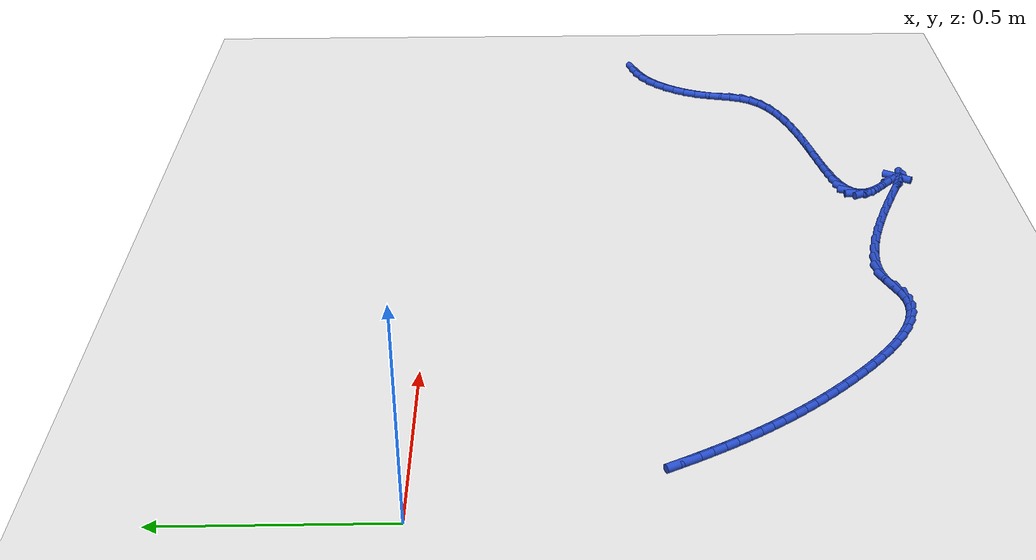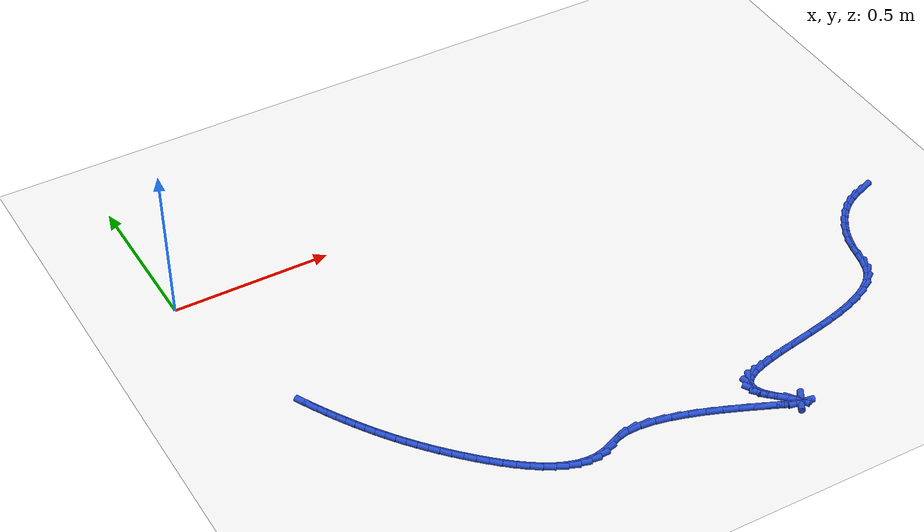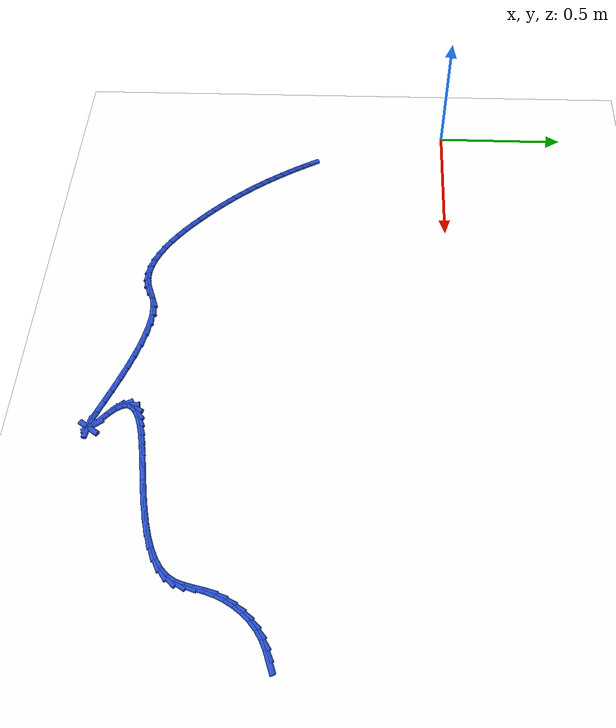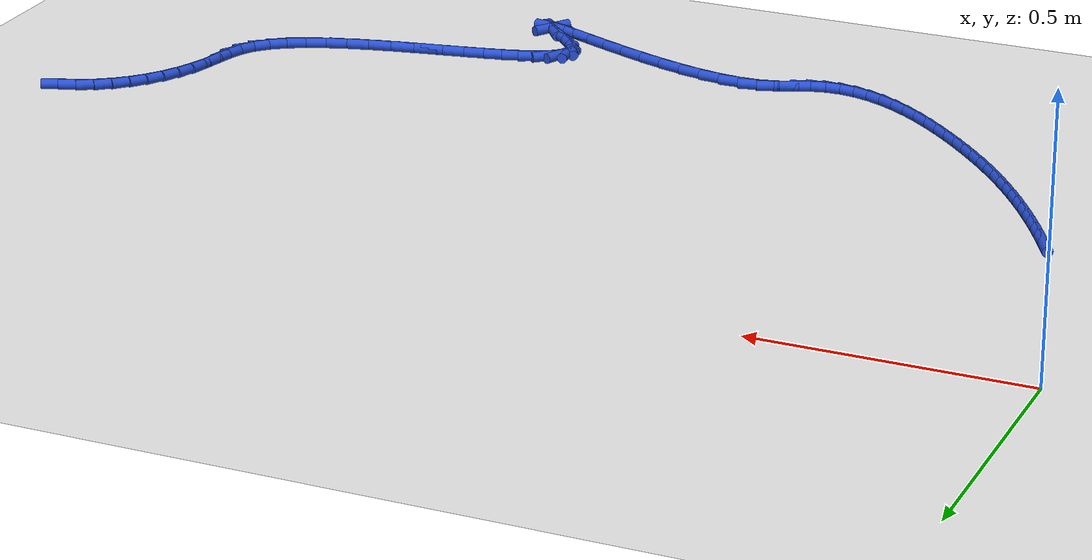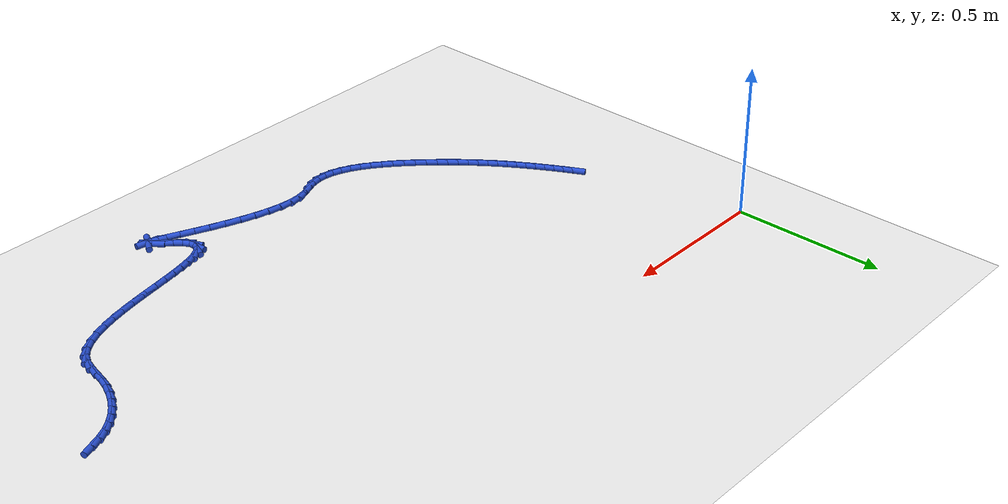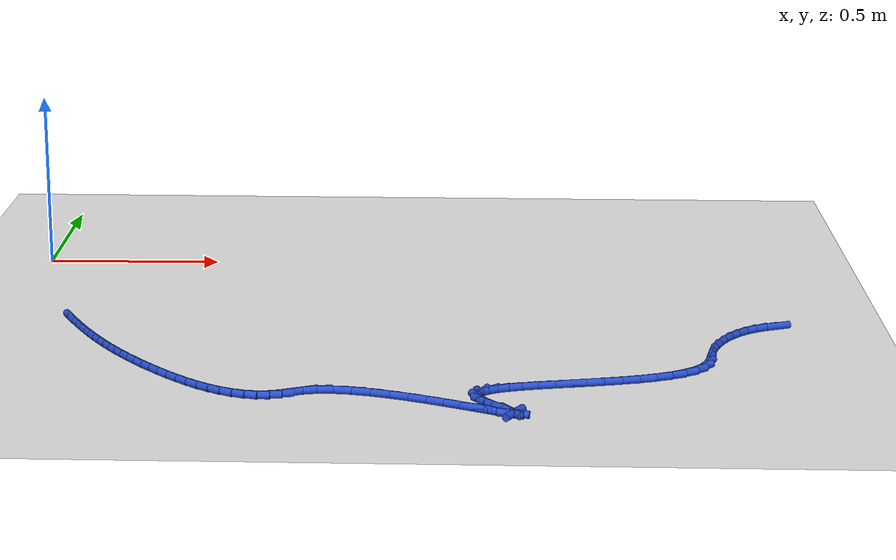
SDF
<sdf version="1.6">
 <world name="default">
  <model name="ground_plane">
   <static>1</static>
   <link name="link">
    <collision name="collision">
     <geometry><plane><normal>0 0 1</normal><size>100 100</size></plane></geometry>
     <surface><friction><ode><mu>100</mu><mu2>50</mu2></ode></friction></surface>
    </collision>
    <visual name="visual">
     <cast_shadows>0</cast_shadows>
     <geometry><plane><normal>0 0 1</normal><size>100 100</size></plane></geometry>
     <material>
      <script><uri>file://media/materials/scripts/gazebo.material</uri><name>Gazebo/WhiteGlow</name></script>
     </material>
    </visual>
   </link>
  </model>
  <model name="line">
   <link name="link_142">
    <pose>2.0906836996609313 -0.5619551692725093 0.01 0 1.57 0.36632144584368065</pose>
    <collision name="collision">
     <geometry><cylinder><radius>0.01</radius><length>0.08</length></cylinder></geometry>
    </collision>
    <visual name="visual">
     <material>
      <script><name>Gazebo/Blue</name><uri>file://media/materials/scripts/gazebo.material</uri></script>
     </material>
     <geometry><cylinder><radius>0.01</radius><length>0.08</length></cylinder></geometry>
    </visual>
   </link>
   <link name="link_143">
    <pose>2.0600702103494464 -0.573699643334735 0.01 0 1.57 0.45559553834545385</pose>
    <collision name="collision">
     <geometry><cylinder><radius>0.01</radius><length>0.08</length></cylinder></geometry>
    </collision>
    <visual name="visual">
     <material>
      <script><name>Gazebo/Blue</name><uri>file://media/materials/scripts/gazebo.material</uri></script>
     </material>
     <geometry><cylinder><radius>0.01</radius><length>0.08</length></cylinder></geometry>
    </visual>
   </link>
   <link name="link_144">
    <pose>2.0303823651149937 -0.5882459469600918 0.01 0 1.57 0.5963834001328773</pose>
    <collision name="collision">
     <geometry><cylinder><radius>0.01</radius><length>0.08</length></cylinder></geometry>
    </collision>
    <visual name="visual">
     <material>
      <script><name>Gazebo/Blue</name><uri>file://media/materials/scripts/gazebo.material</uri></script>
     </material>
     <geometry><cylinder><radius>0.01</radius><length>0.08</length></cylinder></geometry>
    </visual>
   </link>
   <link name="link_145">
    <pose>2.003159341376341 -0.6067260397685962 0.01 0 1.57 0.7272837824652816</pose>
    <collision name="collision">
     <geometry><cylinder><radius>0.01</radius><length>0.08</length></cylinder></geometry>
    </collision>
    <visual name="visual">
     <material>
      <script><name>Gazebo/Blue</name><uri>file://media/materials/scripts/gazebo.material</uri></script>
     </material>
     <geometry><cylinder><radius>0.01</radius><length>0.08</length></cylinder></geometry>
    </visual>
   </link>
   <link name="link_146">
    <pose>1.978504035169031 -0.6286701943649338 0.01 0 1.57 0.847855510485952</pose>
    <collision name="collision">
     <geometry><cylinder><radius>0.01</radius><length>0.08</length></cylinder></geometry>
    </collision>
    <visual name="visual">
     <material>
      <script><name>Gazebo/Blue</name><uri>file://media/materials/scripts/gazebo.material</uri></script>
     </material>
     <geometry><cylinder><radius>0.01</radius><length>0.08</length></cylinder></geometry>
    </visual>
   </link>
   <link name="link_147">
    <pose>1.9565101952284643 -0.6535984826284744 0.01 0 1.57 0.959193108778748</pose>
    <collision name="collision">
     <geometry><cylinder><radius>0.01</radius><length>0.08</length></cylinder></geometry>
    </collision>
    <visual name="visual">
     <material>
      <script><name>Gazebo/Blue</name><uri>file://media/materials/scripts/gazebo.material</uri></script>
     </material>
     <geometry><cylinder><radius>0.01</radius><length>0.08</length></cylinder></geometry>
    </visual>
   </link>
   <link name="link_148">
    <pose>1.9372715702900387 -0.6810309764385851 0.01 0 1.57 1.0630550082466668</pose>
    <collision name="collision">
     <geometry><cylinder><radius>0.01</radius><length>0.08</length></cylinder></geometry>
    </collision>
    <visual name="visual">
     <material>
      <script><name>Gazebo/Blue</name><uri>file://media/materials/scripts/gazebo.material</uri></script>
     </material>
     <geometry><cylinder><radius>0.01</radius><length>0.08</length></cylinder></geometry>
    </visual>
   </link>
   <link name="link_149">
    <pose>1.9208819090891533 -0.7104877476746355 0.01 0 1.57 1.1615319816280951</pose>
    <collision name="collision">
     <geometry><cylinder><radius>0.01</radius><length>0.08</length></cylinder></geometry>
    </collision>
    <visual name="visual">
     <material>
      <script><name>Gazebo/Blue</name><uri>file://media/materials/scripts/gazebo.material</uri></script>
     </material>
     <geometry><cylinder><radius>0.01</radius><length>0.08</length></cylinder></geometry>
    </visual>
   </link>
   <link name="link_150">
    <pose>1.9074349603612057 -0.7414888682159938 0.01 0 1.57 1.2568694731622234</pose>
    <collision name="collision">
     <geometry><cylinder><radius>0.01</radius><length>0.08</length></cylinder></geometry>
    </collision>
    <visual name="visual">
     <material>
      <script><name>Gazebo/Blue</name><uri>file://media/materials/scripts/gazebo.material</uri></script>
     </material>
     <geometry><cylinder><radius>0.01</radius><length>0.08</length></cylinder></geometry>
    </visual>
   </link>
   <link name="link_151">
    <pose>1.8970244728415953 -0.7735544099420293 0.01 0 1.57 1.341524679505708</pose>
    <collision name="collision">
     <geometry><cylinder><radius>0.01</radius><length>0.08</length></cylinder></geometry>
    </collision>
    <visual name="visual">
     <material>
      <script><name>Gazebo/Blue</name><uri>file://media/materials/scripts/gazebo.material</uri></script>
     </material>
     <geometry><cylinder><radius>0.01</radius><length>0.08</length></cylinder></geometry>
    </visual>
   </link>
   <link name="link_152">
    <pose>1.8894219530695773 -0.8061307910149897 0.01 0 1.57 1.353788322171627</pose>
    <collision name="collision">
     <geometry><cylinder><radius>0.01</radius><length>0.08</length></cylinder></geometry>
    </collision>
    <visual name="visual">
     <material>
      <script><name>Gazebo/Blue</name><uri>file://media/materials/scripts/gazebo.material</uri></script>
     </material>
     <geometry><cylinder><radius>0.01</radius><length>0.08</length></cylinder></geometry>
    </visual>
   </link>
   <link name="link_153">
    <pose>1.882352087686618 -0.8381965954787125 0.01 0 1.57 1.2640453747436993</pose>
    <collision name="collision">
     <geometry><cylinder><radius>0.01</radius><length>0.08</length></cylinder></geometry>
    </collision>
    <visual name="visual">
     <material>
      <script><name>Gazebo/Blue</name><uri>file://media/materials/scripts/gazebo.material</uri></script>
     </material>
     <geometry><cylinder><radius>0.01</radius><length>0.08</length></cylinder></geometry>
    </visual>
   </link>
   <link name="link_154">
    <pose>1.8727385329436648 -0.8685473187980274 0.01 0 1.57 1.0650056965505226</pose>
    <collision name="collision">
     <geometry><cylinder><radius>0.01</radius><length>0.08</length></cylinder></geometry>
    </collision>
    <visual name="visual">
     <material>
      <script><name>Gazebo/Blue</name><uri>file://media/materials/scripts/gazebo.material</uri></script>
     </material>
     <geometry><cylinder><radius>0.01</radius><length>0.08</length></cylinder></geometry>
    </visual>
   </link>
   <link name="link_155">
    <pose>1.8575385443693597 -0.895991786990873 0.01 0 1.57 0.823199007827089</pose>
    <collision name="collision">
     <geometry><cylinder><radius>0.01</radius><length>0.08</length></cylinder></geometry>
    </collision>
    <visual name="visual">
     <material>
      <script><name>Gazebo/Blue</name><uri>file://media/materials/scripts/gazebo.material</uri></script>
     </material>
     <geometry><cylinder><radius>0.01</radius><length>0.08</length></cylinder></geometry>
    </visual>
   </link>
   <link name="link_156">
    <pose>1.8353154444579778 -0.9199618600107436 0.01 0 1.57 0.6310422627033839</pose>
    <collision name="collision">
     <geometry><cylinder><radius>0.01</radius><length>0.08</length></cylinder></geometry>
    </collision>
    <visual name="visual">
     <material>
      <script><name>Gazebo/Blue</name><uri>file://media/materials/scripts/gazebo.material</uri></script>
     </material>
     <geometry><cylinder><radius>0.01</radius><length>0.08</length></cylinder></geometry>
    </visual>
   </link>
   <link name="link_157">
    <pose>1.8068610039549227 -0.9407538691649446 0.01 0 1.57 0.4896037346792309</pose>
    <collision name="collision">
     <geometry><cylinder><radius>0.01</radius><length>0.08</length></cylinder></geometry>
    </collision>
    <visual name="visual">
     <material>
      <script><name>Gazebo/Blue</name><uri>file://media/materials/scripts/gazebo.material</uri></script>
     </material>
     <geometry><cylinder><radius>0.01</radius><length>0.08</length></cylinder></geometry>
    </visual>
   </link>
   <link name="link_158">
    <pose>1.7731311307542903 -0.9587278187058746 0.01 0 1.57 0.3871977227724144</pose>
    <collision name="collision">
     <geometry><cylinder><radius>0.01</radius><length>0.08</length></cylinder></geometry>
    </collision>
    <visual name="visual">
     <material>
      <script><name>Gazebo/Blue</name><uri>file://media/materials/scripts/gazebo.material</uri></script>
     </material>
     <geometry><cylinder><radius>0.01</radius><length>0.08</length></cylinder></geometry>
    </visual>
   </link>
   <link name="link_159">
    <pose>1.7350817327501808 -0.9742437128859337 0.01 0 1.57 0.313327740997417</pose>
    <collision name="collision">
     <geometry><cylinder><radius>0.01</radius><length>0.08</length></cylinder></geometry>
    </collision>
    <visual name="visual">
     <material>
      <script><name>Gazebo/Blue</name><uri>file://media/materials/scripts/gazebo.material</uri></script>
     </material>
     <geometry><cylinder><radius>0.01</radius><length>0.08</length></cylinder></geometry>
    </visual>
   </link>
   <link name="link_160">
    <pose>1.693668717836693 -0.9876615559575218 0.01 0 1.57 0.26048030536387357</pose>
    <collision name="collision">
     <geometry><cylinder><radius>0.01</radius><length>0.08</length></cylinder></geometry>
    </collision>
    <visual name="visual">
     <material>
      <script><name>Gazebo/Blue</name><uri>file://media/materials/scripts/gazebo.material</uri></script>
     </material>
     <geometry><cylinder><radius>0.01</radius><length>0.08</length></cylinder></geometry>
    </visual>
   </link>
   <link name="link_161">
    <pose>1.649847993907924 -0.9993413521730384 0.01 0 1.57 0.22374004082236312</pose>
    <collision name="collision">
     <geometry><cylinder><radius>0.01</radius><length>0.08</length></cylinder></geometry>
    </collision>
    <visual name="visual">
     <material>
      <script><name>Gazebo/Blue</name><uri>file://media/materials/scripts/gazebo.material</uri></script>
     </material>
     <geometry><cylinder><radius>0.01</radius><length>0.08</length></cylinder></geometry>
    </visual>
   </link>
   <link name="link_162">
    <pose>1.604575468857972 -1.0096431057848836 0.01 0 1.57 0.20012586623471662</pose>
    <collision name="collision">
     <geometry><cylinder><radius>0.01</radius><length>0.08</length></cylinder></geometry>
    </collision>
    <visual name="visual">
     <material>
      <script><name>Gazebo/Blue</name><uri>file://media/materials/scripts/gazebo.material</uri></script>
     </material>
     <geometry><cylinder><radius>0.01</radius><length>0.08</length></cylinder></geometry>
    </visual>
   </link>
   <link name="link_163">
    <pose>1.5588070505809375 -1.0189268210454565 0.01 0 1.57 0.18812585415509947</pose>
    <collision name="collision">
     <geometry><cylinder><radius>0.01</radius><length>0.08</length></cylinder></geometry>
    </collision>
    <visual name="visual">
     <material>
      <script><name>Gazebo/Blue</name><uri>file://media/materials/scripts/gazebo.material</uri></script>
     </material>
     <geometry><cylinder><radius>0.01</radius><length>0.08</length></cylinder></geometry>
    </visual>
   </link>
   <link name="link_164">
    <pose>1.513498646970918 -1.0275525022071572 0.01 0 1.57 0.18749982109726615</pose>
    <collision name="collision">
     <geometry><cylinder><radius>0.01</radius><length>0.08</length></cylinder></geometry>
    </collision>
    <visual name="visual">
     <material>
      <script><name>Gazebo/Blue</name><uri>file://media/materials/scripts/gazebo.material</uri></script>
     </material>
     <geometry><cylinder><radius>0.01</radius><length>0.08</length></cylinder></geometry>
    </visual>
   </link>
   <link name="link_165">
    <pose>1.4696061659220114 -1.035880153522385 0.01 0 1.57 0.19937468738658137</pose>
    <collision name="collision">
     <geometry><cylinder><radius>0.01</radius><length>0.08</length></cylinder></geometry>
    </collision>
    <visual name="visual">
     <material>
      <script><name>Gazebo/Blue</name><uri>file://media/materials/scripts/gazebo.material</uri></script>
     </material>
     <geometry><cylinder><radius>0.01</radius><length>0.08</length></cylinder></geometry>
    </visual>
   </link>
   <link name="link_166">
    <pose>1.428085515328317 -1.0442697792435403 0.01 0 1.57 0.22674553475334042</pose>
    <collision name="collision">
     <geometry><cylinder><radius>0.01</radius><length>0.08</length></cylinder></geometry>
    </collision>
    <visual name="visual">
     <material>
      <script><name>Gazebo/Blue</name><uri>file://media/materials/scripts/gazebo.material</uri></script>
     </material>
     <geometry><cylinder><radius>0.01</radius><length>0.08</length></cylinder></geometry>
    </visual>
   </link>
   <link name="link_167">
    <pose>1.3898926030839331 -1.0530813836230224 0.01 0 1.57 0.27571375284520266</pose>
    <collision name="collision">
     <geometry><cylinder><radius>0.01</radius><length>0.08</length></cylinder></geometry>
    </collision>
    <visual name="visual">
     <material>
      <script><name>Gazebo/Blue</name><uri>file://media/materials/scripts/gazebo.material</uri></script>
     </material>
     <geometry><cylinder><radius>0.01</radius><length>0.08</length></cylinder></geometry>
    </visual>
   </link>
   <link name="link_168">
    <pose>1.3559833370829573 -1.0626749709132306 0.01 0 1.57 0.3582945353469574</pose>
    <collision name="collision">
     <geometry><cylinder><radius>0.01</radius><length>0.08</length></cylinder></geometry>
    </collision>
    <visual name="visual">
     <material>
      <script><name>Gazebo/Blue</name><uri>file://media/materials/scripts/gazebo.material</uri></script>
     </material>
     <geometry><cylinder><radius>0.01</radius><length>0.08</length></cylinder></geometry>
    </visual>
   </link>
   <link name="link_169">
    <pose>1.3273136252194893 -1.0734105453665657 0.01 0 1.57 0.4986223178614491</pose>
    <collision name="collision">
     <geometry><cylinder><radius>0.01</radius><length>0.08</length></cylinder></geometry>
    </collision>
    <visual name="visual">
     <material>
      <script><name>Gazebo/Blue</name><uri>file://media/materials/scripts/gazebo.material</uri></script>
     </material>
     <geometry><cylinder><radius>0.01</radius><length>0.08</length></cylinder></geometry>
    </visual>
   </link>
   <link name="link_170">
    <pose>1.3048393753876255 -1.0856481112354266 0.01 0 1.57 0.7438443656944697</pose>
    <collision name="collision">
     <geometry><cylinder><radius>0.01</radius><length>0.08</length></cylinder></geometry>
    </collision>
    <visual name="visual">
     <material>
      <script><name>Gazebo/Blue</name><uri>file://media/materials/scripts/gazebo.material</uri></script>
     </material>
     <geometry><cylinder><radius>0.01</radius><length>0.08</length></cylinder></geometry>
    </visual>
   </link>
   <link name="link_171">
    <pose>1.2895164954814666 -1.0997476727722129 0.01 0 1.57 1.1545396438220514</pose>
    <collision name="collision">
     <geometry><cylinder><radius>0.01</radius><length>0.08</length></cylinder></geometry>
    </collision>
    <visual name="visual">
     <material>
      <script><name>Gazebo/Blue</name><uri>file://media/materials/scripts/gazebo.material</uri></script>
     </material>
     <geometry><cylinder><radius>0.01</radius><length>0.08</length></cylinder></geometry>
    </visual>
   </link>
   <link name="link_172">
    <pose>1.2823008933951108 -1.116069234229325 0.01 0 1.57 -1.4733684610729632</pose>
    <collision name="collision">
     <geometry><cylinder><radius>0.01</radius><length>0.08</length></cylinder></geometry>
    </collision>
    <visual name="visual">
     <material>
      <script><name>Gazebo/Blue</name><uri>file://media/materials/scripts/gazebo.material</uri></script>
     </material>
     <geometry><cylinder><radius>0.01</radius><length>0.08</length></cylinder></geometry>
    </visual>
   </link>
   <link name="link_173">
    <pose>1.2841484770226557 -1.1349727998591619 0.01 0 1.57 -1.0731831261711169</pose>
    <collision name="collision">
     <geometry><cylinder><radius>0.01</radius><length>0.08</length></cylinder></geometry>
    </collision>
    <visual name="visual">
     <material>
      <script><name>Gazebo/Blue</name><uri>file://media/materials/scripts/gazebo.material</uri></script>
     </material>
     <geometry><cylinder><radius>0.01</radius><length>0.08</length></cylinder></geometry>
    </visual>
   </link>
   <link name="link_174">
    <pose>1.2960151542581992 -1.1568183739141231 0.01 0 1.57 -0.8486389355131677</pose>
    <collision name="collision">
     <geometry><cylinder><radius>0.01</radius><length>0.08</length></cylinder></geometry>
    </collision>
    <visual name="visual">
     <material>
      <script><name>Gazebo/Blue</name><uri>file://media/materials/scripts/gazebo.material</uri></script>
     </material>
     <geometry><cylinder><radius>0.01</radius><length>0.08</length></cylinder></geometry>
    </visual>
   </link>
   <link name="link_175">
    <pose>1.3176339738696163 -1.1813603349042567 0.01 0 1.57 -0.7676201691831692</pose>
    <collision name="collision">
     <geometry><cylinder><radius>0.01</radius><length>0.08</length></cylinder></geometry>
    </collision>
    <visual name="visual">
     <material>
      <script><name>Gazebo/Blue</name><uri>file://media/materials/scripts/gazebo.material</uri></script>
     </material>
     <geometry><cylinder><radius>0.01</radius><length>0.08</length></cylinder></geometry>
    </visual>
   </link>
   <link name="link_176">
    <pose>1.3423001236904202 -1.2051646856519125 0.01 0 1.57 -0.7765489299348476</pose>
    <collision name="collision">
     <geometry><cylinder><radius>0.01</radius><length>0.08</length></cylinder></geometry>
    </collision>
    <visual name="visual">
     <material>
      <script><name>Gazebo/Blue</name><uri>file://media/materials/scripts/gazebo.material</uri></script>
     </material>
     <geometry><cylinder><radius>0.01</radius><length>0.08</length></cylinder></geometry>
    </visual>
   </link>
   <link name="link_177">
    <pose>1.3612467595261564 -1.2237789278325124 0.01 0 1.57 -0.9396586685330433</pose>
    <collision name="collision">
     <geometry><cylinder><radius>0.01</radius><length>0.08</length></cylinder></geometry>
    </collision>
    <visual name="visual">
     <material>
      <script><name>Gazebo/Blue</name><uri>file://media/materials/scripts/gazebo.material</uri></script>
     </material>
     <geometry><cylinder><radius>0.01</radius><length>0.08</length></cylinder></geometry>
    </visual>
   </link>
   <link name="link_178">
    <pose>1.3692171241705777 -1.234684408577766 0.01 0 1.57 1.0041831767819922</pose>
    <collision name="collision">
     <geometry><cylinder><radius>0.01</radius><length>0.08</length></cylinder></geometry>
    </collision>
    <visual name="visual">
     <material>
      <script><name>Gazebo/Blue</name><uri>file://media/materials/scripts/gazebo.material</uri></script>
     </material>
     <geometry><cylinder><radius>0.01</radius><length>0.08</length></cylinder></geometry>
    </visual>
   </link>
   <link name="link_179">
    <pose>1.3667532780295755 -1.2385571591297868 0.01 0 1.57 -0.18288460975876947</pose>
    <collision name="collision">
     <geometry><cylinder><radius>0.01</radius><length>0.08</length></cylinder></geometry>
    </collision>
    <visual name="visual">
     <material>
      <script><name>Gazebo/Blue</name><uri>file://media/materials/scripts/gazebo.material</uri></script>
     </material>
     <geometry><cylinder><radius>0.01</radius><length>0.08</length></cylinder></geometry>
    </visual>
   </link>
   <link name="link_180">
    <pose>1.3549402013058849 -1.236372316059432 0.01 0 1.57 -0.34729450269102885</pose>
    <collision name="collision">
     <geometry><cylinder><radius>0.01</radius><length>0.08</length></cylinder></geometry>
    </collision>
    <visual name="visual">
     <material>
      <script><name>Gazebo/Blue</name><uri>file://media/materials/scripts/gazebo.material</uri></script>
     </material>
     <geometry><cylinder><radius>0.01</radius><length>0.08</length></cylinder></geometry>
    </visual>
   </link>
   <link name="link_181">
    <pose>1.3348628742022413 -1.2291050159375592 0.01 0 1.57 -0.39534447182398935</pose>
    <collision name="collision">
     <geometry><cylinder><radius>0.01</radius><length>0.08</length></cylinder></geometry>
    </collision>
    <visual name="visual">
     <material>
      <script><name>Gazebo/Blue</name><uri>file://media/materials/scripts/gazebo.material</uri></script>
     </material>
     <geometry><cylinder><radius>0.01</radius><length>0.08</length></cylinder></geometry>
    </visual>
   </link>
   <link name="link_182">
    <pose>1.3076062769213803 -1.2177303953350251 0.01 0 1.57 -0.4102891923181999</pose>
    <collision name="collision">
     <geometry><cylinder><radius>0.01</radius><length>0.08</length></cylinder></geometry>
    </collision>
    <visual name="visual">
     <material>
      <script><name>Gazebo/Blue</name><uri>file://media/materials/scripts/gazebo.material</uri></script>
     </material>
     <geometry><cylinder><radius>0.01</radius><length>0.08</length></cylinder></geometry>
    </visual>
   </link>
   <link name="link_183">
    <pose>1.2742553896660374 -1.203223590822687 0.01 0 1.57 -0.4098095120029016</pose>
    <collision name="collision">
     <geometry><cylinder><radius>0.01</radius><length>0.08</length></cylinder></geometry>
    </collision>
    <visual name="visual">
     <material>
      <script><name>Gazebo/Blue</name><uri>file://media/materials/scripts/gazebo.material</uri></script>
     </material>
     <geometry><cylinder><radius>0.01</radius><length>0.08</length></cylinder></geometry>
    </visual>
   </link>
   <link name="link_184">
    <pose>1.2358951926389472 -1.1865597389714018 0.01 0 1.57 -0.39936085213410594</pose>
    <collision name="collision">
     <geometry><cylinder><radius>0.01</radius><length>0.08</length></cylinder></geometry>
    </collision>
    <visual name="visual">
     <material>
      <script><name>Gazebo/Blue</name><uri>file://media/materials/scripts/gazebo.material</uri></script>
     </material>
     <geometry><cylinder><radius>0.01</radius><length>0.08</length></cylinder></geometry>
    </visual>
   </link>
   <link name="link_185">
    <pose>1.193610666042845 -1.168713976352026 0.01 0 1.57 -0.3805634300857182</pose>
    <collision name="collision">
     <geometry><cylinder><radius>0.01</radius><length>0.08</length></cylinder></geometry>
    </collision>
    <visual name="visual">
     <material>
      <script><name>Gazebo/Blue</name><uri>file://media/materials/scripts/gazebo.material</uri></script>
     </material>
     <geometry><cylinder><radius>0.01</radius><length>0.08</length></cylinder></geometry>
    </visual>
   </link>
   <link name="link_186">
    <pose>1.1484867900804672 -1.150661439535418 0.01 0 1.57 -0.3532390826267295</pose>
    <collision name="collision">
     <geometry><cylinder><radius>0.01</radius><length>0.08</length></cylinder></geometry>
    </collision>
    <visual name="visual">
     <material>
      <script><name>Gazebo/Blue</name><uri>file://media/materials/scripts/gazebo.material</uri></script>
     </material>
     <geometry><cylinder><radius>0.01</radius><length>0.08</length></cylinder></geometry>
    </visual>
   </link>
   <link name="link_187">
    <pose>1.1016085449545483 -1.1333772650924336 0.01 0 1.57 -0.31589914402682745</pose>
    <collision name="collision">
     <geometry><cylinder><radius>0.01</radius><length>0.08</length></cylinder></geometry>
    </collision>
    <visual name="visual">
     <material>
      <script><name>Gazebo/Blue</name><uri>file://media/materials/scripts/gazebo.material</uri></script>
     </material>
     <geometry><cylinder><radius>0.01</radius><length>0.08</length></cylinder></geometry>
    </visual>
   </link>
   <link name="link_188">
    <pose>1.0540609108678245 -1.117836589593931 0.01 0 1.57 -0.2656169676909347</pose>
    <collision name="collision">
     <geometry><cylinder><radius>0.01</radius><length>0.08</length></cylinder></geometry>
    </collision>
    <visual name="visual">
     <material>
      <script><name>Gazebo/Blue</name><uri>file://media/materials/scripts/gazebo.material</uri></script>
     </material>
     <geometry><cylinder><radius>0.01</radius><length>0.08</length></cylinder></geometry>
    </visual>
   </link>
   <link name="link_189">
    <pose>1.0069288680230297 -1.1050145496107664 0.01 0 1.57 -0.19743714721833477</pose>
    <collision name="collision">
     <geometry><cylinder><radius>0.01</radius><length>0.08</length></cylinder></geometry>
    </collision>
    <visual name="visual">
     <material>
      <script><name>Gazebo/Blue</name><uri>file://media/materials/scripts/gazebo.material</uri></script>
     </material>
     <geometry><cylinder><radius>0.01</radius><length>0.08</length></cylinder></geometry>
    </visual>
   </link>
   <link name="link_190">
    <pose>0.9612973966229004 -1.095886281713797 0.01 0 1.57 -0.10322717187276048</pose>
    <collision name="collision">
     <geometry><cylinder><radius>0.01</radius><length>0.08</length></cylinder></geometry>
    </collision>
    <visual name="visual">
     <material>
      <script><name>Gazebo/Blue</name><uri>file://media/materials/scripts/gazebo.material</uri></script>
     </material>
     <geometry><cylinder><radius>0.01</radius><length>0.08</length></cylinder></geometry>
    </visual>
   </link>
   <link name="link_191">
    <pose>0.9182514768701714 -1.0914269224738806 0.01 0 1.57 0.030077893215979402</pose>
    <collision name="collision">
     <geometry><cylinder><radius>0.01</radius><length>0.08</length></cylinder></geometry>
    </collision>
    <visual name="visual">
     <material>
      <script><name>Gazebo/Blue</name><uri>file://media/materials/scripts/gazebo.material</uri></script>
     </material>
     <geometry><cylinder><radius>0.01</radius><length>0.08</length></cylinder></geometry>
    </visual>
   </link>
   <link name="link_192">
    <pose>0.8788760889675773 -1.0926116084618736 0.01 0 1.57 0.21880267039475806</pose>
    <collision name="collision">
     <geometry><cylinder><radius>0.01</radius><length>0.08</length></cylinder></geometry>
    </collision>
    <visual name="visual">
     <material>
      <script><name>Gazebo/Blue</name><uri>file://media/materials/scripts/gazebo.material</uri></script>
     </material>
     <geometry><cylinder><radius>0.01</radius><length>0.08</length></cylinder></geometry>
    </visual>
   </link>
   <link name="link_193">
    <pose>0.844204162568986 -1.1003213465885633 0.01 0 1.57 0.3835893705721904</pose>
    <collision name="collision">
     <geometry><cylinder><radius>0.01</radius><length>0.08</length></cylinder></geometry>
    </collision>
    <visual name="visual">
     <material>
      <script><name>Gazebo/Blue</name><uri>file://media/materials/scripts/gazebo.material</uri></script>
     </material>
     <geometry><cylinder><radius>0.01</radius><length>0.08</length></cylinder></geometry>
    </visual>
   </link>
   <link name="link_194">
    <pose>0.8137143956829117 -1.1126264280350397 0.01 0 1.57 0.38955531603547233</pose>
    <collision name="collision">
     <geometry><cylinder><radius>0.01</radius><length>0.08</length></cylinder></geometry>
    </collision>
    <visual name="visual">
     <material>
      <script><name>Gazebo/Blue</name><uri>file://media/materials/scripts/gazebo.material</uri></script>
     </material>
     <geometry><cylinder><radius>0.01</radius><length>0.08</length></cylinder></geometry>
    </visual>
   </link>
   <link name="link_195">
    <pose>0.7851024441690615 -1.124372640975158 0.01 0 1.57 0.22630056118987327</pose>
    <collision name="collision">
     <geometry><cylinder><radius>0.01</radius><length>0.08</length></cylinder></geometry>
    </collision>
    <visual name="visual">
     <material>
      <script><name>Gazebo/Blue</name><uri>file://media/materials/scripts/gazebo.material</uri></script>
     </material>
     <geometry><cylinder><radius>0.01</radius><length>0.08</length></cylinder></geometry>
    </visual>
   </link>
   <link name="link_196">
    <pose>0.7563038009976545 -1.13100336925753 0.01 0 1.57 0.02916015024804442</pose>
    <collision name="collision">
     <geometry><cylinder><radius>0.01</radius><length>0.08</length></cylinder></geometry>
    </collision>
    <visual name="visual">
     <material>
      <script><name>Gazebo/Blue</name><uri>file://media/materials/scripts/gazebo.material</uri></script>
     </material>
     <geometry><cylinder><radius>0.01</radius><length>0.08</length></cylinder></geometry>
    </visual>
   </link>
   <link name="link_197">
    <pose>0.726953422579073 -1.1318594733683498 0.01 0 1.57 -0.14543435728150783</pose>
    <collision name="collision">
     <geometry><cylinder><radius>0.01</radius><length>0.08</length></cylinder></geometry>
    </collision>
    <visual name="visual">
     <material>
      <script><name>Gazebo/Blue</name><uri>file://media/materials/scripts/gazebo.material</uri></script>
     </material>
     <geometry><cylinder><radius>0.01</radius><length>0.08</length></cylinder></geometry>
    </visual>
   </link>
   <link name="link_198">
    <pose>0.6972193508113539 -1.1275043692103404 0.01 0 1.57 -0.2919959526525905</pose>
    <collision name="collision">
     <geometry><cylinder><radius>0.01</radius><length>0.08</length></cylinder></geometry>
    </collision>
    <visual name="visual">
     <material>
      <script><name>Gazebo/Blue</name><uri>file://media/materials/scripts/gazebo.material</uri></script>
     </material>
     <geometry><cylinder><radius>0.01</radius><length>0.08</length></cylinder></geometry>
    </visual>
   </link>
   <link name="link_199">
    <pose>0.6672698161662188 -1.1185019051530343 0.01 0 1.57 -0.41135758597143074</pose>
    <collision name="collision">
     <geometry><cylinder><radius>0.01</radius><length>0.08</length></cylinder></geometry>
    </collision>
    <visual name="visual">
     <material>
      <script><name>Gazebo/Blue</name><uri>file://media/materials/scripts/gazebo.material</uri></script>
     </material>
     <geometry><cylinder><radius>0.01</radius><length>0.08</length></cylinder></geometry>
    </visual>
   </link>
   <link name="link_200">
    <pose>0.6372730491153886 -1.1054159295659634 0.01 0 1.57 -0.507302828728934</pose>
    <collision name="collision">
     <geometry><cylinder><radius>0.01</radius><length>0.08</length></cylinder></geometry>
    </collision>
    <visual name="visual">
     <material>
      <script><name>Gazebo/Blue</name><uri>file://media/materials/scripts/gazebo.material</uri></script>
     </material>
     <geometry><cylinder><radius>0.01</radius><length>0.08</length></cylinder></geometry>
    </visual>
   </link>
   <link name="link_201">
    <pose>0.6073972801305864 -1.0888102908186612 0.01 0 1.57 -0.5841809876713627</pose>
    <collision name="collision">
     <geometry><cylinder><radius>0.01</radius><length>0.08</length></cylinder></geometry>
    </collision>
    <visual name="visual">
     <material>
      <script><name>Gazebo/Blue</name><uri>file://media/materials/scripts/gazebo.material</uri></script>
     </material>
     <geometry><cylinder><radius>0.01</radius><length>0.08</length></cylinder></geometry>
    </visual>
   </link>
   <link name="link_202">
    <pose>0.577810739683533 -1.06924883728066 0.01 0 1.57 -0.6458393187412081</pose>
    <collision name="collision">
     <geometry><cylinder><radius>0.01</radius><length>0.08</length></cylinder></geometry>
    </collision>
    <visual name="visual">
     <material>
      <script><name>Gazebo/Blue</name><uri>file://media/materials/scripts/gazebo.material</uri></script>
     </material>
     <geometry><cylinder><radius>0.01</radius><length>0.08</length></cylinder></geometry>
    </visual>
   </link>
   <link name="link_203">
    <pose>0.5486816582459502 -1.047295417321492 0.01 0 1.57 -0.6953324521222864</pose>
    <collision name="collision">
     <geometry><cylinder><radius>0.01</radius><length>0.08</length></cylinder></geometry>
    </collision>
    <visual name="visual">
     <material>
      <script><name>Gazebo/Blue</name><uri>file://media/materials/scripts/gazebo.material</uri></script>
     </material>
     <geometry><cylinder><radius>0.01</radius><length>0.08</length></cylinder></geometry>
    </visual>
   </link>
   <link name="link_204">
    <pose>0.5201782662895595 -1.0235138793106902 0.01 0 1.57 -0.7349500517288132</pose>
    <collision name="collision">
     <geometry><cylinder><radius>0.01</radius><length>0.08</length></cylinder></geometry>
    </collision>
    <visual name="visual">
     <material>
      <script><name>Gazebo/Blue</name><uri>file://media/materials/scripts/gazebo.material</uri></script>
     </material>
     <geometry><cylinder><radius>0.01</radius><length>0.08</length></cylinder></geometry>
    </visual>
   </link>
   <link name="link_205">
    <pose>0.4924687942860825 -0.9984680716177866 0.01 0 1.57 -0.7663297021333138</pose>
    <collision name="collision">
     <geometry><cylinder><radius>0.01</radius><length>0.08</length></cylinder></geometry>
    </collision>
    <visual name="visual">
     <material>
      <script><name>Gazebo/Blue</name><uri>file://media/materials/scripts/gazebo.material</uri></script>
     </material>
     <geometry><cylinder><radius>0.01</radius><length>0.08</length></cylinder></geometry>
    </visual>
   </link>
   <link name="link_206">
    <pose>0.46572147270724096 -0.9727218426123141 0.01 0 1.57 -0.7908357561317707</pose>
    <collision name="collision">
     <geometry><cylinder><radius>0.01</radius><length>0.08</length></cylinder></geometry>
    </collision>
    <visual name="visual">
     <material>
      <script><name>Gazebo/Blue</name><uri>file://media/materials/scripts/gazebo.material</uri></script>
     </material>
     <geometry><cylinder><radius>0.01</radius><length>0.08</length></cylinder></geometry>
    </visual>
   </link>
   <link name="link_207">
    <pose>0.44009538962180544 -0.9468155446644411 0.01 0 1.57 -0.8127788602239083</pose>
    <collision name="collision">
     <geometry><cylinder><radius>0.01</radius><length>0.08</length></cylinder></geometry>
    </collision>
    <visual name="visual">
     <material>
      <script><name>Gazebo/Blue</name><uri>file://media/materials/scripts/gazebo.material</uri></script>
     </material>
     <geometry><cylinder><radius>0.01</radius><length>0.08</length></cylinder></geometry>
    </visual>
   </link>
   <link name="link_208">
    <pose>0.415623560868398 -0.9209655241849377 0.01 0 1.57 -0.8349010626112939</pose>
    <collision name="collision">
     <geometry><cylinder><radius>0.01</radius><length>0.08</length></cylinder></geometry>
    </collision>
    <visual name="visual">
     <material>
      <script><name>Gazebo/Blue</name><uri>file://media/materials/scripts/gazebo.material</uri></script>
     </material>
     <geometry><cylinder><radius>0.01</radius><length>0.08</length></cylinder></geometry>
    </visual>
   </link>
   <link name="link_209">
    <pose>0.39224716023489664 -0.8951520932752722 0.01 0 1.57 -0.8571428372444971</pose>
    <collision name="collision">
     <geometry><cylinder><radius>0.01</radius><length>0.08</length></cylinder></geometry>
    </collision>
    <visual name="visual">
     <material>
      <script><name>Gazebo/Blue</name><uri>file://media/materials/scripts/gazebo.material</uri></script>
     </material>
     <geometry><cylinder><radius>0.01</radius><length>0.08</length></cylinder></geometry>
    </visual>
   </link>
   <link name="link_210">
    <pose>0.3699052812333435 -0.8693502177226083 0.01 0 1.57 -0.8793712906063943</pose>
    <collision name="collision">
     <geometry><cylinder><radius>0.01</radius><length>0.08</length></cylinder></geometry>
    </collision>
    <visual name="visual">
     <material>
      <script><name>Gazebo/Blue</name><uri>file://media/materials/scripts/gazebo.material</uri></script>
     </material>
     <geometry><cylinder><radius>0.01</radius><length>0.08</length></cylinder></geometry>
    </visual>
   </link>
   <link name="link_211">
    <pose>0.3485370173757813 -0.8435348633141109 0.01 0 1.57 -0.9014449079385262</pose>
    <collision name="collision">
     <geometry><cylinder><radius>0.01</radius><length>0.08</length></cylinder></geometry>
    </collision>
    <visual name="visual">
     <material>
      <script><name>Gazebo/Blue</name><uri>file://media/materials/scripts/gazebo.material</uri></script>
     </material>
     <geometry><cylinder><radius>0.01</radius><length>0.08</length></cylinder></geometry>
    </visual>
   </link>
   <link name="link_212">
    <pose>0.32808146217425305 -0.8176809958369433 0.01 0 1.57 -0.923216190202061</pose>
    <collision name="collision">
     <geometry><cylinder><radius>0.01</radius><length>0.08</length></cylinder></geometry>
    </collision>
    <visual name="visual">
     <material>
      <script><name>Gazebo/Blue</name><uri>file://media/materials/scripts/gazebo.material</uri></script>
     </material>
     <geometry><cylinder><radius>0.01</radius><length>0.08</length></cylinder></geometry>
    </visual>
   </link>
   <link name="link_213">
    <pose>0.30847770914080175 -0.7917635810782707 0.01 0 1.57 -0.944534662008966</pose>
    <collision name="collision">
     <geometry><cylinder><radius>0.01</radius><length>0.08</length></cylinder></geometry>
    </collision>
    <visual name="visual">
     <material>
      <script><name>Gazebo/Blue</name><uri>file://media/materials/scripts/gazebo.material</uri></script>
     </material>
     <geometry><cylinder><radius>0.01</radius><length>0.08</length></cylinder></geometry>
    </visual>
   </link>
   <link name="link_214">
    <pose>0.28966485178747003 -0.7657575848252567 0.01 0 1.57 -0.96525011341431</pose>
    <collision name="collision">
     <geometry><cylinder><radius>0.01</radius><length>0.08</length></cylinder></geometry>
    </collision>
    <visual name="visual">
     <material>
      <script><name>Gazebo/Blue</name><uri>file://media/materials/scripts/gazebo.material</uri></script>
     </material>
     <geometry><cylinder><radius>0.01</radius><length>0.08</length></cylinder></geometry>
    </visual>
   </link>
   <link name="link_215">
    <pose>0.27158198362630037 -0.7396379728650654 0.01 0 1.57 -0.9852159164106002</pose>
    <collision name="collision">
     <geometry><cylinder><radius>0.01</radius><length>0.08</length></cylinder></geometry>
    </collision>
    <visual name="visual">
     <material>
      <script><name>Gazebo/Blue</name><uri>file://media/materials/scripts/gazebo.material</uri></script>
     </material>
     <geometry><cylinder><radius>0.01</radius><length>0.08</length></cylinder></geometry>
    </visual>
   </link>
   <link name="link_216">
    <pose>0.2541681981693368 -0.7133797109848622 0.01 0 1.57 -1.004292249593984</pose>
    <collision name="collision">
     <geometry><cylinder><radius>0.01</radius><length>0.08</length></cylinder></geometry>
    </collision>
    <visual name="visual">
     <material>
      <script><name>Gazebo/Blue</name><uri>file://media/materials/scripts/gazebo.material</uri></script>
     </material>
     <geometry><cylinder><radius>0.01</radius><length>0.08</length></cylinder></geometry>
    </visual>
   </link>
   <link name="link_217">
    <pose>0.2373625889286215 -0.6869577649718107 0.01 0 1.57 -1.0223490728401519</pose>
    <collision name="collision">
     <geometry><cylinder><radius>0.01</radius><length>0.08</length></cylinder></geometry>
    </collision>
    <visual name="visual">
     <material>
      <script><name>Gazebo/Blue</name><uri>file://media/materials/scripts/gazebo.material</uri></script>
     </material>
     <geometry><cylinder><radius>0.01</radius><length>0.08</length></cylinder></geometry>
    </visual>
   </link>
   <link name="link_218">
    <pose>0.22110424941619738 -0.660347100613075 0.01 0 1.57 -1.0392687165979746</pose>
    <collision name="collision">
     <geometry><cylinder><radius>0.01</radius><length>0.08</length></cylinder></geometry>
    </collision>
    <visual name="visual">
     <material>
      <script><name>Gazebo/Blue</name><uri>file://media/materials/scripts/gazebo.material</uri></script>
     </material>
     <geometry><cylinder><radius>0.01</radius><length>0.08</length></cylinder></geometry>
    </visual>
   </link>
   <link name="link_219">
    <pose>0.20533227314410735 -0.63352268369582 0.01 0 1.57 -1.054947984153227</pose>
    <collision name="collision">
     <geometry><cylinder><radius>0.01</radius><length>0.08</length></cylinder></geometry>
    </collision>
    <visual name="visual">
     <material>
      <script><name>Gazebo/Blue</name><uri>file://media/materials/scripts/gazebo.material</uri></script>
     </material>
     <geometry><cylinder><radius>0.01</radius><length>0.08</length></cylinder></geometry>
    </visual>
   </link>
   <link name="link_220">
    <pose>0.18998575362439427 -0.6064594800072093 0.01 0 1.57 -1.0692997051404087</pose>
    <collision name="collision">
     <geometry><cylinder><radius>0.01</radius><length>0.08</length></cylinder></geometry>
    </collision>
    <visual name="visual">
     <material>
      <script><name>Gazebo/Blue</name><uri>file://media/materials/scripts/gazebo.material</uri></script>
     </material>
     <geometry><cylinder><radius>0.01</radius><length>0.08</length></cylinder></geometry>
    </visual>
   </link>
   <link name="link_221">
    <pose>0.17500378436910097 -0.5791324553344073 0.01 0 1.57 -1.0822537194988975</pose>
    <collision name="collision">
     <geometry><cylinder><radius>0.01</radius><length>0.08</length></cylinder></geometry>
    </collision>
    <visual name="visual">
     <material>
      <script><name>Gazebo/Blue</name><uri>file://media/materials/scripts/gazebo.material</uri></script>
     </material>
     <geometry><cylinder><radius>0.01</radius><length>0.08</length></cylinder></geometry>
    </visual>
   </link>
   <link name="link_222">
    <pose>0.16032545889027042 -0.5515165754645787 0.01 0 1.57 -1.093757308322607</pose>
    <collision name="collision">
     <geometry><cylinder><radius>0.01</radius><length>0.08</length></cylinder></geometry>
    </collision>
    <visual name="visual">
     <material>
      <script><name>Gazebo/Blue</name><uri>file://media/materials/scripts/gazebo.material</uri></script>
     </material>
     <geometry><cylinder><radius>0.01</radius><length>0.08</length></cylinder></geometry>
    </visual>
   </link>
  </model>
 </world>
</sdf>
